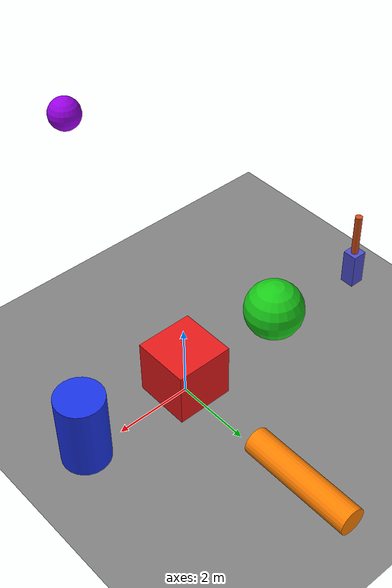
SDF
<sdf version="1.10">
 <world name="my_first_world">
  <physics name="1ms" type="ignored">
   <max_step_size>0.001</max_step_size>
   <real_time_factor>1.0</real_time_factor>
  </physics>
  <plugin filename="gz-sim-physics-system" name="gz::sim::systems::Physics"/>
  <plugin filename="gz-sim-user-commands-system" name="gz::sim::systems::UserCommands"/>
  <plugin filename="gz-sim-scene-broadcaster-system" name="gz::sim::systems::SceneBroadcaster"/>
  <light type="directional" name="sun">
   <pose>0 0 10 0 0 0</pose>
   <diffuse>1.0 0.95 0.8 1</diffuse>
   <specular>0.4 0.4 0.3 1</specular>
   <attenuation>
    <range>1000</range>
    <constant>0.9</constant>
    <linear>0.01</linear>
    <quadratic>0.001</quadratic>
   </attenuation>
   <direction>-0.5 0.1 -0.9</direction>
  </light>
  <model name="ground_plane">
   <static>true</static>
   <link name="link">
    <collision name="collision"><geometry><plane><normal>0 0 1</normal></plane></geometry></collision>
    <visual name="visual">
     <geometry><plane><normal>0 0 1</normal><size>100 100</size></plane></geometry>
     <material>
      <ambient>0.5 0.5 0.5 1</ambient>
      <diffuse>0.5 0.5 0.5 1</diffuse>
      <specular>0.1 0.1 0.1 1</specular>
     </material>
    </visual>
   </link>
  </model>
  <model name="red_box">
   <static>true</static>
   <pose>0 0 0.75 0 0 0</pose>
   <link name="link">
    <visual name="visual">
     <geometry><box><size>1.5 1.5 1.5</size></box></geometry>
     <material>
      <ambient>0.9 0.1 0.1 1</ambient>
      <diffuse>0.9 0.1 0.1 1</diffuse>
      <specular>0.3 0.0 0.0 1</specular>
     </material>
    </visual>
    <collision name="collision"><geometry><box><size>1.5 1.5 1.5</size></box></geometry></collision>
   </link>
  </model>
  <model name="blue_cylinder">
   <static>true</static>
   <pose>3 0 1.0 0 0 0</pose>
   <link name="link">
    <visual name="visual">
     <geometry><cylinder><radius>0.6</radius><length>2.0</length></cylinder></geometry>
     <material>
      <ambient>0.1 0.2 0.9 1</ambient>
      <diffuse>0.1 0.2 0.9 1</diffuse>
      <specular>0.0 0.0 0.4 1</specular>
     </material>
    </visual>
    <collision name="collision">
     <geometry><cylinder><radius>0.6</radius><length>2.0</length></cylinder></geometry>
    </collision>
   </link>
  </model>
  <model name="green_sphere">
   <static>true</static>
   <pose>-3 0 0.8 0 0 0</pose>
   <link name="link">
    <visual name="visual">
     <geometry><sphere><radius>0.8</radius></sphere></geometry>
     <material>
      <ambient>0.1 0.8 0.1 1</ambient>
      <diffuse>0.1 0.8 0.1 1</diffuse>
      <specular>0.0 0.3 0.0 1</specular>
     </material>
    </visual>
    <collision name="collision"><geometry><sphere><radius>0.8</radius></sphere></geometry></collision>
   </link>
  </model>
  <model name="orange_log">
   <static>true</static>
   <pose>0 4 0.35 1.5708 0 0</pose>
   <link name="link">
    <visual name="visual">
     <geometry><cylinder><radius>0.35</radius><length>3.0</length></cylinder></geometry>
     <material>
      <ambient>1.0 0.5 0.0 1</ambient>
      <diffuse>1.0 0.5 0.0 1</diffuse>
      <specular>0.4 0.2 0.0 1</specular>
     </material>
    </visual>
    <collision name="collision">
     <geometry><cylinder><radius>0.35</radius><length>3.0</length></cylinder></geometry>
    </collision>
   </link>
  </model>
  <model name="dynamic_purple_sphere">
   <pose>0 -4 6 0 0 0</pose>
   <link name="link">
    <inertial>
     <mass>2.0</mass>
     <inertia><ixx>0.128</ixx><ixy>0</ixy><ixz>0</ixz><iyy>0.128</iyy><iyz>0</iyz><izz>0.128</izz></inertia>
    </inertial>
    <visual name="visual">
     <geometry><sphere><radius>0.4</radius></sphere></geometry>
     <material>
      <ambient>0.6 0.0 0.9 1</ambient>
      <diffuse>0.6 0.0 0.9 1</diffuse>
      <specular>0.3 0.0 0.5 1</specular>
     </material>
    </visual>
    <collision name="collision"><geometry><sphere><radius>0.4</radius></sphere></geometry></collision>
   </link>
  </model>
  <model name="simple_arm">
   <pose>-6 0 0 0 0 0</pose>
   <link name="base_link">
    <pose>0 0 0.5 0 0 0</pose>
    <inertial>
     <mass>5.0</mass>
     <inertia><ixx>0.1</ixx><ixy>0</ixy><ixz>0</ixz><iyy>0.1</iyy><iyz>0</iyz><izz>0.1</izz></inertia>
    </inertial>
    <visual name="visual">
     <geometry><box><size>0.4 0.4 1.0</size></box></geometry>
     <material>
      <ambient>0.3 0.3 0.8 1</ambient>
      <diffuse>0.3 0.3 0.8 1</diffuse>
      <specular>0.1 0.1 0.3 1</specular>
     </material>
    </visual>
    <collision name="collision"><geometry><box><size>0.4 0.4 1.0</size></box></geometry></collision>
   </link>
   <link name="arm_link">
    <pose>0 0 1.6 0 0 0</pose>
    <inertial>
     <mass>1.0</mass>
     <inertia><ixx>0.02</ixx><ixy>0</ixy><ixz>0</ixz><iyy>0.1</iyy><iyz>0</iyz><izz>0.1</izz></inertia>
    </inertial>
    <visual name="visual">
     <geometry><cylinder><radius>0.1</radius><length>1.2</length></cylinder></geometry>
     <material>
      <ambient>0.8 0.3 0.1 1</ambient>
      <diffuse>0.8 0.3 0.1 1</diffuse>
      <specular>0.3 0.1 0.0 1</specular>
     </material>
    </visual>
    <collision name="collision">
     <geometry><cylinder><radius>0.1</radius><length>1.2</length></cylinder></geometry>
    </collision>
   </link>
   <joint name="arm_joint" type="revolute">
    <pose relative_to="arm_link">0 0 -0.6 0 0 0</pose>
    <parent>base_link</parent>
    <child>arm_link</child>
    <axis>
     <xyz expressed_in="__model__">0 0 1</xyz>
     <limit><lower>-3.1416</lower><upper>3.1416</upper></limit>
    </axis>
   </joint>
   <joint name="base_to_world" type="fixed"><parent>world</parent><child>base_link</child></joint>
  </model>
 </world>
</sdf>
